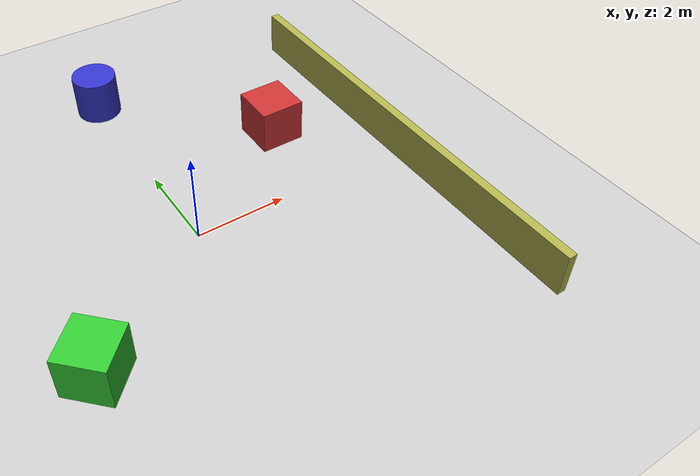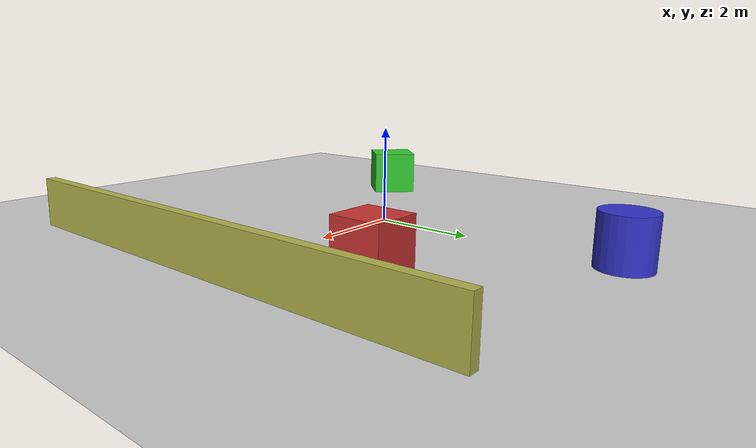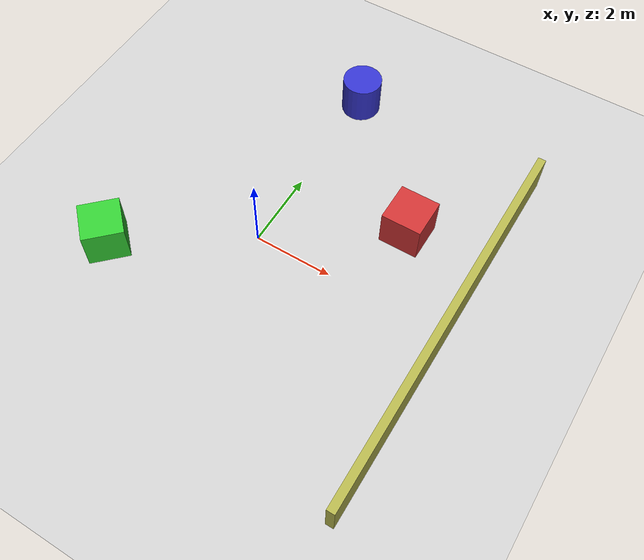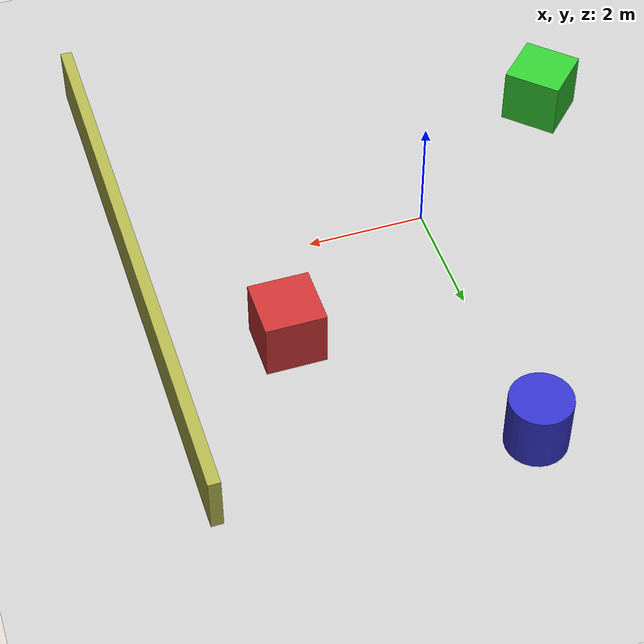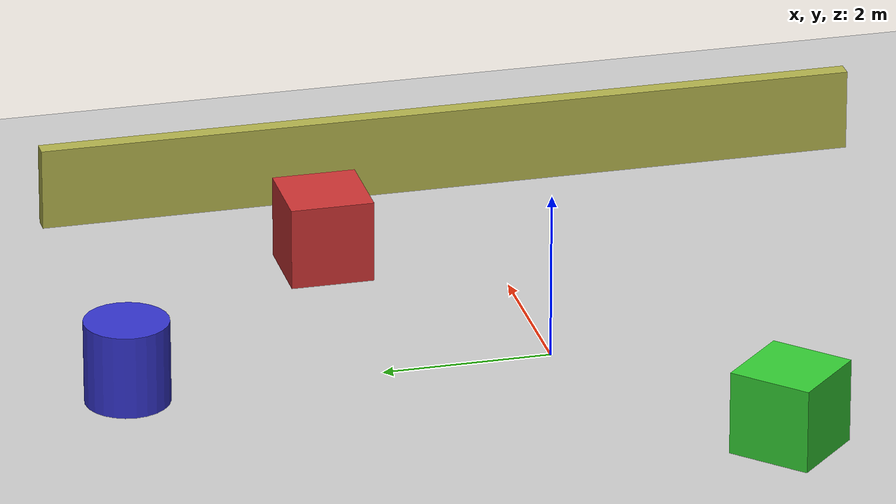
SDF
<?xml version="1.0"?>
<sdf version="1.8">
  <world name="ackermann_world">

    <!-- Physics settings -->
    <physics name="1ms" type="ignored">
      <max_step_size>0.001</max_step_size>
      <real_time_factor>1.0</real_time_factor>
    </physics>

    <!-- Essential Gazebo plugins -->
    <plugin
      filename="libignition-gazebo-physics-system.so"
      name="ignition::gazebo::systems::Physics">
    </plugin>

    <plugin
      filename="libignition-gazebo-user-commands-system.so"
      name="ignition::gazebo::systems::UserCommands">
    </plugin>

    <plugin
      filename="libignition-gazebo-scene-broadcaster-system.so"
      name="ignition::gazebo::systems::SceneBroadcaster">
    </plugin>

    <plugin
      filename="libignition-gazebo-sensors-system.so"
      name="ignition::gazebo::systems::Sensors">
      <render_engine>ogre2</render_engine>
    </plugin>

    <!-- World properties -->
    <gravity>0 0 -9.8</gravity>
    <magnetic_field>5.565e-06 2.289e-05 -4.239e-05</magnetic_field>
    <atmosphere type="adiabatic"/>

    <!-- Scene settings -->
    <scene>
      <ambient>0.4 0.4 0.4 1</ambient>
      <background>0.7 0.7 0.7 1</background>
      <shadows>true</shadows>
      <grid>true</grid>
    </scene>

    <!-- Ground plane -->
    <model name="ground_plane">
      <static>true</static>
      <link name="ground">
        <collision name="collision">
          <geometry>
            <plane>
              <normal>0 0 1</normal>
              <size>100 100</size>
            </plane>
          </geometry>
          <surface>
            <friction>
              <ode>
                <mu>100</mu>
                <mu2>50</mu2>
              </ode>
            </friction>
          </surface>
        </collision>

        <visual name="visual">
          <geometry>
            <plane>
              <normal>0 0 1</normal>
              <size>100 100</size>
            </plane>
          </geometry>
          <material>
            <ambient>0.8 0.8 0.8 1</ambient>
            <diffuse>0.8 0.8 0.8 1</diffuse>
            <specular>0.8 0.8 0.8 1</specular>
          </material>
        </visual>
      </link>
    </model>

    <!-- Sun (directional light) -->
    <light type="directional" name="sun">
      <cast_shadows>true</cast_shadows>
      <pose>0 0 10 0 0 0</pose>
      <diffuse>0.8 0.8 0.8 1</diffuse>
      <specular>0.2 0.2 0.2 1</specular>
      <attenuation>
        <range>1000</range>
        <constant>0.9</constant>
        <linear>0.01</linear>
        <quadratic>0.001</quadratic>
      </attenuation>
      <direction>-0.5 0.1 -0.9</direction>
    </light>

    <!-- Simple test obstacles -->
    <!-- Box obstacle 1 -->
    <model name="box_obstacle_1">
      <static>true</static>
      <pose>3 2 0.5 0 0 0</pose>
      <link name="link">
        <collision name="collision">
          <geometry>
            <box>
              <size>1 1 1</size>
            </box>
          </geometry>
        </collision>
        <visual name="visual">
          <geometry>
            <box>
              <size>1 1 1</size>
            </box>
          </geometry>
          <material>
            <ambient>0.8 0.2 0.2 1</ambient>
            <diffuse>0.8 0.2 0.2 1</diffuse>
            <specular>0.8 0.2 0.2 1</specular>
          </material>
        </visual>
      </link>
    </model>

    <!-- Box obstacle 2 -->
    <model name="box_obstacle_2">
      <static>true</static>
      <pose>-3 -2 0.5 0 0 0.785</pose>
      <link name="link">
        <collision name="collision">
          <geometry>
            <box>
              <size>1 1 1</size>
            </box>
          </geometry>
        </collision>
        <visual name="visual">
          <geometry>
            <box>
              <size>1 1 1</size>
            </box>
          </geometry>
          <material>
            <ambient>0.2 0.8 0.2 1</ambient>
            <diffuse>0.2 0.8 0.2 1</diffuse>
            <specular>0.2 0.8 0.2 1</specular>
          </material>
        </visual>
      </link>
    </model>

    <!-- Cylinder obstacle -->
    <model name="cylinder_obstacle">
      <static>true</static>
      <pose>0 5 0.5 0 0 0</pose>
      <link name="link">
        <collision name="collision">
          <geometry>
            <cylinder>
              <radius>0.5</radius>
              <length>1.0</length>
            </cylinder>
          </geometry>
        </collision>
        <visual name="visual">
          <geometry>
            <cylinder>
              <radius>0.5</radius>
              <length>1.0</length>
            </cylinder>
          </geometry>
          <material>
            <ambient>0.2 0.2 0.8 1</ambient>
            <diffuse>0.2 0.2 0.8 1</diffuse>
            <specular>0.2 0.2 0.8 1</specular>
          </material>
        </visual>
      </link>
    </model>

    <!-- Wall for testing -->
    <model name="wall">
      <static>true</static>
      <pose>5 0 0.5 0 0 0</pose>
      <link name="link">
        <collision name="collision">
          <geometry>
            <box>
              <size>0.2 10 1</size>
            </box>
          </geometry>
        </collision>
        <visual name="visual">
          <geometry>
            <box>
              <size>0.2 10 1</size>
            </box>
          </geometry>
          <material>
            <ambient>0.7 0.7 0.3 1</ambient>
            <diffuse>0.7 0.7 0.3 1</diffuse>
            <specular>0.7 0.7 0.3 1</specular>
          </material>
        </visual>
      </link>
    </model>

  </world>
</sdf>
